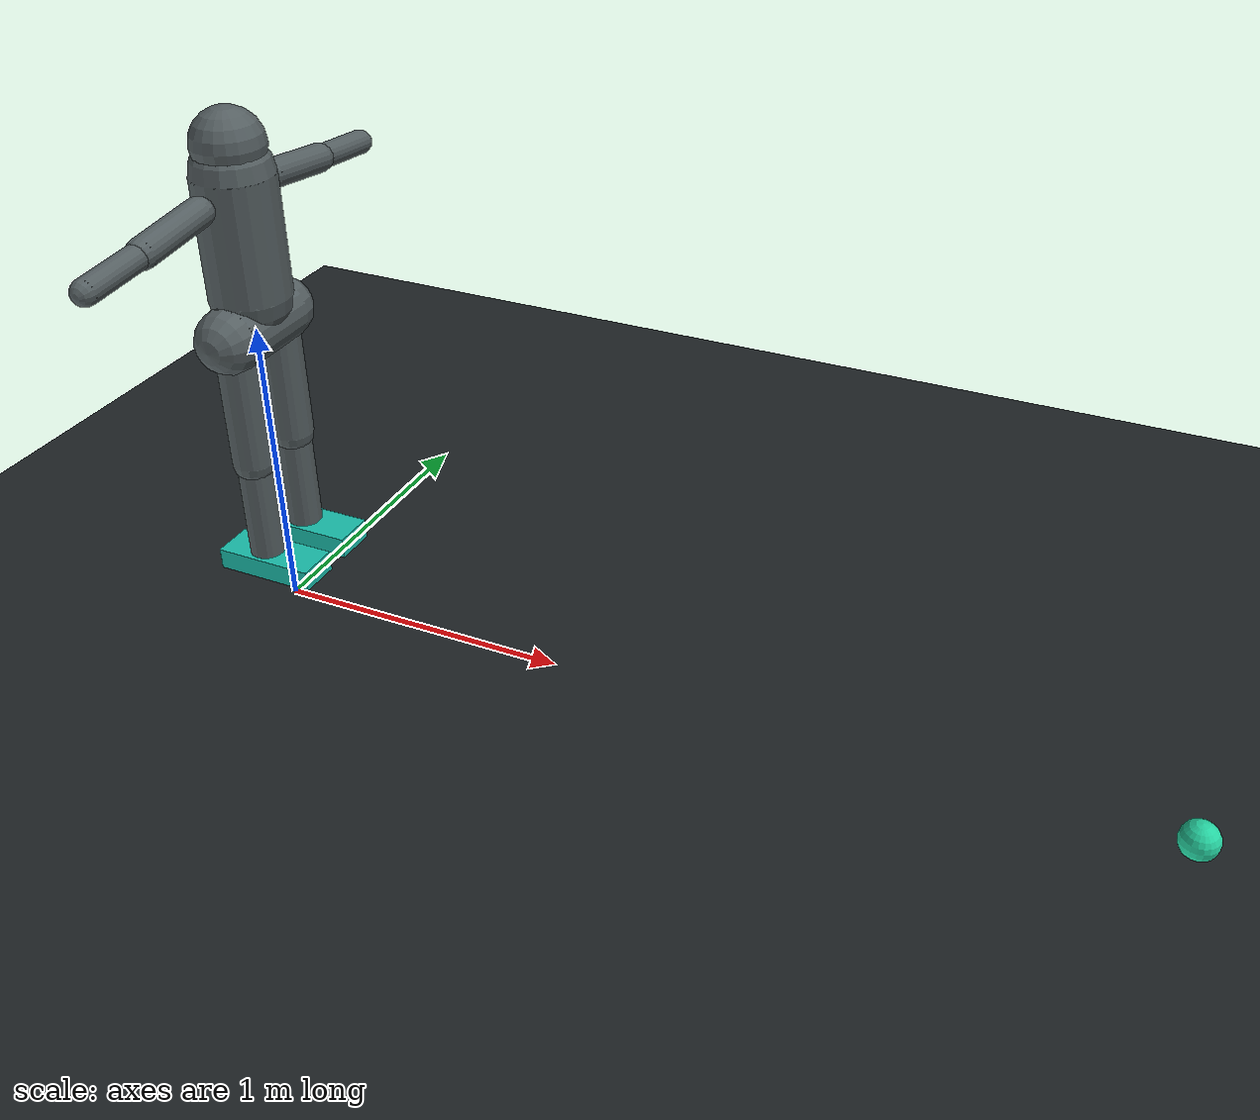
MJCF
<mujoco model="digital_breakdown_physical_human">
  <compiler angle="radian" autolimits="true"/>
  <option timestep="0.0041666667" gravity="0 0 -9.81" integrator="implicitfast">
    <flag contact="enable"/>
  </option>
  <visual>
    <global offwidth="960" offheight="540"/>
  </visual>

  <default>
    <joint damping="1.3" armature="0.025" frictionloss="0.08"/>
    <geom condim="3" friction="1.1 0.02 0.002" density="720"
          solref="0.012 1" solimp="0.9 0.95 0.002"/>
    <position ctrllimited="true" ctrlrange="-1 1" forcelimited="true"/>
  </default>

  <asset>
    <texture name="sky" type="skybox" builtin="gradient"
             rgb1="0.16 0.18 0.20" rgb2="0.02 0.025 0.03" width="512" height="3072"/>
    <material name="skin" rgba="0.34 0.38 0.39 1" roughness="0.72"/>
    <material name="joint" rgba="0.10 0.75 0.68 1" emission="0.08"/>
    <material name="floor" rgba="0.12 0.14 0.15 1" roughness="0.9"/>
  </asset>

  <worldbody>
    <light pos="-2 -3 5" dir="0.3 0.45 -1" diffuse="0.9 0.86 0.76" castshadow="true"/>
    <light pos="3 2 2" dir="-0.5 -0.2 -0.5" diffuse="0.22 0.35 0.42"/>
    <geom name="ground" type="plane" size="12 12 0.1" material="floor"/>
    <site name="desired_target" pos="3 0 0.03" size="0.06" rgba="0.15 0.85 0.65 1"/>

    <body name="pelvis" pos="0 0 1.02">
      <freejoint name="root"/>
      <geom name="pelvis_geom" type="capsule" fromto="0 -0.13 0 0 0.13 0" size="0.105" material="skin"/>
      <site name="pelvis_imu" size="0.015"/>

      <body name="torso" pos="0 0 0.10">
        <joint name="abdomen_pitch" axis="0 1 0" range="-0.55 0.55"/>
        <joint name="abdomen_roll" axis="1 0 0" range="-0.42 0.42"/>
        <geom type="capsule" fromto="0 0 0 0 0 0.39" size="0.13" material="skin"/>
        <body name="head" pos="0 0 0.48">
          <joint name="neck_pitch" axis="0 1 0" range="-0.45 0.45"/>
          <geom type="sphere" size="0.115" material="skin"/>
        </body>

        <body name="left_upper_arm" pos="0 0.17 0.33">
          <joint name="left_shoulder_pitch" axis="0 1 0" range="-1.7 1.7"/>
          <joint name="left_shoulder_roll" axis="1 0 0" range="-1.2 1.2"/>
          <geom type="capsule" fromto="0 0 0 0 0.25 -0.03" size="0.047" material="skin"/>
          <body name="left_forearm" pos="0 0.25 -0.03">
            <joint name="left_elbow" axis="0 1 0" range="-1.9 0.1"/>
            <geom type="capsule" fromto="0 0 0 0 0.23 -0.02" size="0.04" material="skin"/>
          </body>
        </body>
        <body name="right_upper_arm" pos="0 -0.17 0.33">
          <joint name="right_shoulder_pitch" axis="0 1 0" range="-1.7 1.7"/>
          <joint name="right_shoulder_roll" axis="1 0 0" range="-1.2 1.2"/>
          <geom type="capsule" fromto="0 0 0 0 -0.25 -0.03" size="0.047" material="skin"/>
          <body name="right_forearm" pos="0 -0.25 -0.03">
            <joint name="right_elbow" axis="0 1 0" range="-1.9 0.1"/>
            <geom type="capsule" fromto="0 0 0 0 -0.23 -0.02" size="0.04" material="skin"/>
          </body>
        </body>
      </body>

      <body name="left_thigh" pos="0 0.105 -0.08">
        <joint name="left_hip_pitch" axis="0 1 0" range="-1.1 1.1"/>
        <joint name="left_hip_roll" axis="1 0 0" range="-0.55 0.55"/>
        <geom type="capsule" fromto="0 0 0 0 0 -0.36" size="0.068" material="skin"/>
        <body name="left_shin" pos="0 0 -0.36">
          <joint name="left_knee" axis="0 1 0" range="-0.05 2.15"/>
          <geom type="capsule" fromto="0 0 0 0 0 -0.35" size="0.057" material="skin"/>
          <body name="left_foot" pos="0 0 -0.35">
            <joint name="left_ankle_pitch" axis="0 1 0" range="-0.65 0.65"/>
            <joint name="left_ankle_roll" axis="1 0 0" range="-0.35 0.35"/>
            <geom name="left_foot_geom" type="box" pos="0.025 0 -0.025" size="0.17 0.068 0.035" material="joint"/>
            <site name="left_foot_contact" pos="0.025 0 -0.061" size="0.03"/>
          </body>
        </body>
      </body>

      <body name="right_thigh" pos="0 -0.105 -0.08">
        <joint name="right_hip_pitch" axis="0 1 0" range="-1.1 1.1"/>
        <joint name="right_hip_roll" axis="1 0 0" range="-0.55 0.55"/>
        <geom type="capsule" fromto="0 0 0 0 0 -0.36" size="0.068" material="skin"/>
        <body name="right_shin" pos="0 0 -0.36">
          <joint name="right_knee" axis="0 1 0" range="-0.05 2.15"/>
          <geom type="capsule" fromto="0 0 0 0 0 -0.35" size="0.057" material="skin"/>
          <body name="right_foot" pos="0 0 -0.35">
            <joint name="right_ankle_pitch" axis="0 1 0" range="-0.65 0.65"/>
            <joint name="right_ankle_roll" axis="1 0 0" range="-0.35 0.35"/>
            <geom name="right_foot_geom" type="box" pos="0.025 0 -0.025" size="0.17 0.068 0.035" material="joint"/>
            <site name="right_foot_contact" pos="0.025 0 -0.061" size="0.03"/>
          </body>
        </body>
      </body>
    </body>
  </worldbody>

  <contact>
    <exclude body1="pelvis" body2="torso"/>
    <exclude body1="left_thigh" body2="left_shin"/>
    <exclude body1="right_thigh" body2="right_shin"/>
  </contact>

  <actuator>
    <position name="abdomen_pitch_motor" joint="abdomen_pitch" kp="160" ctrlrange="-0.45 0.45" forcerange="-110 110"/>
    <position name="abdomen_roll_motor" joint="abdomen_roll" kp="160" ctrlrange="-0.35 0.35" forcerange="-110 110"/>
    <position name="neck_motor" joint="neck_pitch" kp="35" ctrlrange="-0.35 0.35" forcerange="-18 18"/>
    <position name="left_shoulder_pitch_motor" joint="left_shoulder_pitch" kp="35" forcerange="-28 28"/>
    <position name="left_shoulder_roll_motor" joint="left_shoulder_roll" kp="30" forcerange="-24 24"/>
    <position name="left_elbow_motor" joint="left_elbow" kp="24" forcerange="-18 18"/>
    <position name="right_shoulder_pitch_motor" joint="right_shoulder_pitch" kp="35" forcerange="-28 28"/>
    <position name="right_shoulder_roll_motor" joint="right_shoulder_roll" kp="30" forcerange="-24 24"/>
    <position name="right_elbow_motor" joint="right_elbow" kp="24" forcerange="-18 18"/>
    <position name="left_hip_pitch_motor" joint="left_hip_pitch" kp="190" forcerange="-150 150"/>
    <position name="left_hip_roll_motor" joint="left_hip_roll" kp="170" forcerange="-130 130"/>
    <position name="left_knee_motor" joint="left_knee" kp="210" forcerange="-160 160"/>
    <position name="left_ankle_pitch_motor" joint="left_ankle_pitch" kp="130" forcerange="-95 95"/>
    <position name="left_ankle_roll_motor" joint="left_ankle_roll" kp="120" forcerange="-85 85"/>
    <position name="right_hip_pitch_motor" joint="right_hip_pitch" kp="190" forcerange="-150 150"/>
    <position name="right_hip_roll_motor" joint="right_hip_roll" kp="170" forcerange="-130 130"/>
    <position name="right_knee_motor" joint="right_knee" kp="210" forcerange="-160 160"/>
    <position name="right_ankle_pitch_motor" joint="right_ankle_pitch" kp="130" forcerange="-95 95"/>
    <position name="right_ankle_roll_motor" joint="right_ankle_roll" kp="120" forcerange="-85 85"/>
  </actuator>

  <sensor>
    <framequat name="pelvis_orientation" objtype="site" objname="pelvis_imu"/>
    <gyro name="pelvis_angular_velocity" site="pelvis_imu"/>
    <velocimeter name="pelvis_velocity" site="pelvis_imu"/>
    <touch name="left_foot_touch" site="left_foot_contact"/>
    <touch name="right_foot_touch" site="right_foot_contact"/>
  </sensor>
</mujoco>
